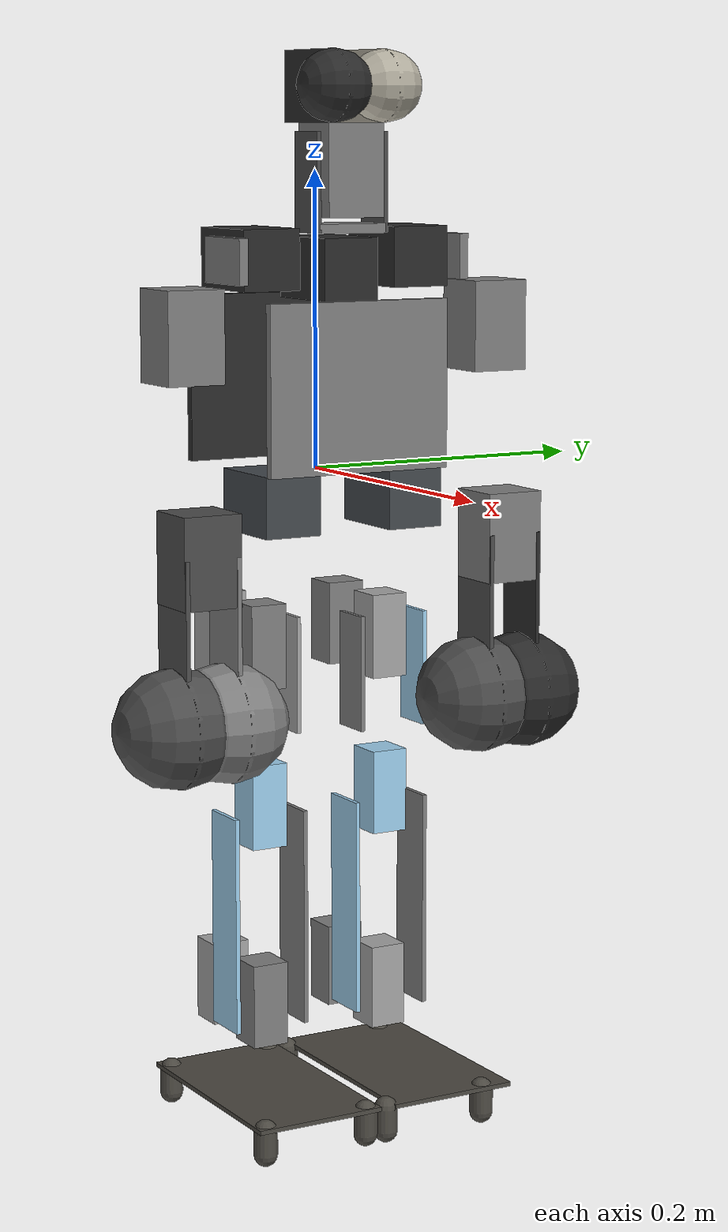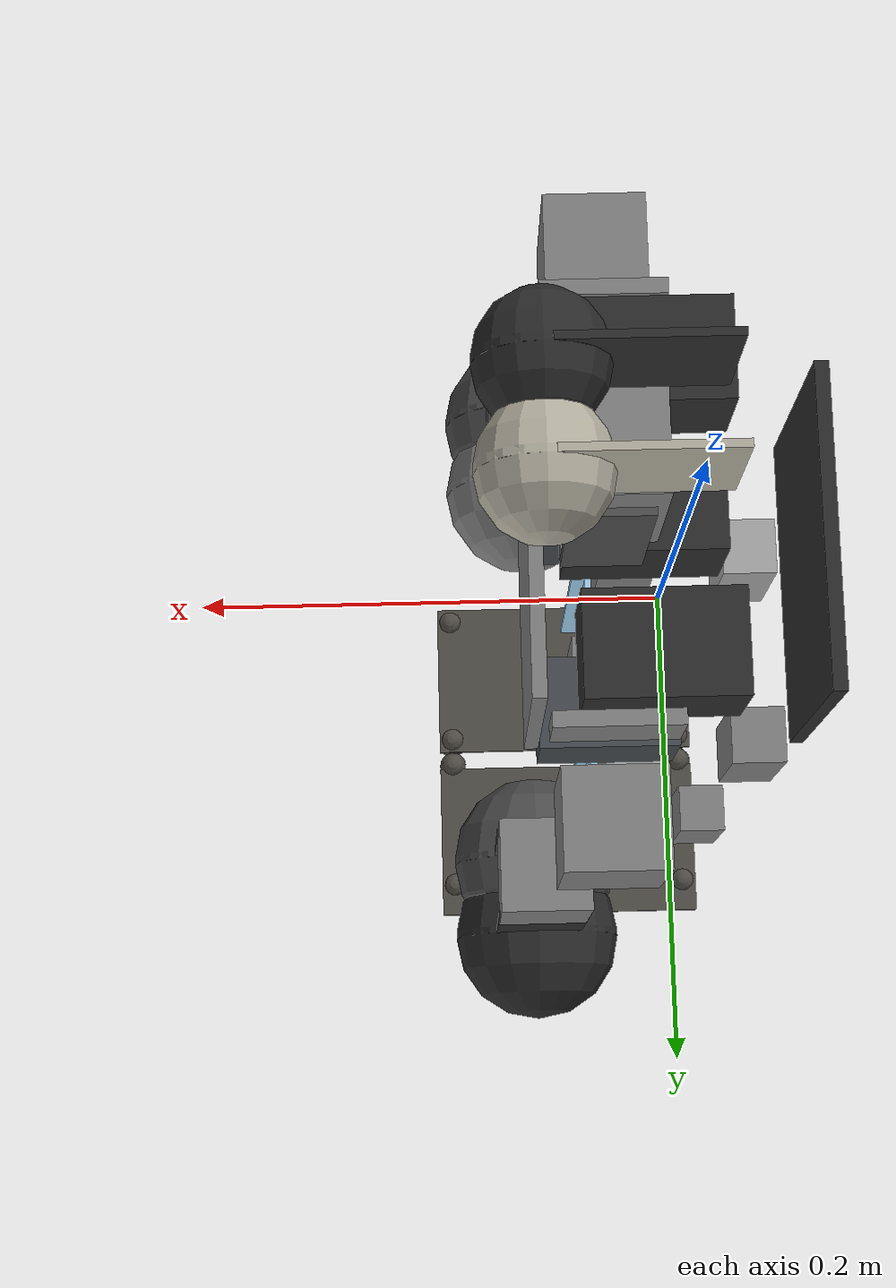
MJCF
<mujoco model="onshape">
  <compiler angle="radian"/>
  <worldbody>
    <!-- CUSTOM -->
    <body name="humanoid" pos="0 0 0">
      <joint name="humanoid_free" type="free"/>
      <!-- CUSTOM -->
      <geom size="0.0665 0.0565 0.003" pos="0.057869 0 0.0595" quat="0.499998 0.5 0.500002 0.5" type="box"/>
      <geom size="0.0201 0.03055 0.0205" pos="0.023419 -0.0464 -0.017" quat="9.38184e-07 -0.707105 0.707108 -9.38187e-07" type="box" rgba="0.262745 0.282353 0.301961 1"/>
      <geom size="0.0201 0.03055 0.0205" pos="0.013319 0.056 0.143" quat="0.499998 -0.5 -0.5 -0.500002" type="box" rgba="0.168627 0.168627 0.168627 1"/>
      <geom size="0.0665 0.0565 0.003" pos="-0.057131 0 0.0595" quat="0.499998 0.5 0.500002 0.5" type="box" rgba="0.168627 0.168627 0.168627 1"/>
      <geom size="0.0201 0.03055 0.0205" pos="0.023419 0.0464 -0.017" quat="9.38184e-07 -0.707105 0.707108 -9.38187e-07" type="box" rgba="0.262745 0.282353 0.301961 1"/>
      <geom size="0.0201 0.03055 0.0205" pos="0.018319 0 0.136" quat="0.707105 0 0 -0.707108" type="box" rgba="0.168627 0.168627 0.168627 1"/>
      <geom size="0.0201 0.03055 0.0205" pos="0.013319 -0.056 0.143" quat="0.499998 0.5 0.5 -0.500002" type="box" rgba="0.168627 0.168627 0.168627 1"/>
      <body name="u_shoulder" pos="0.030869 -0.0795 0.143" quat="9.38184e-07 9.38187e-07 0.707108 0.707105">
        <inertial pos="0 -0.00566234 -0.0159676" quat="0.627076 0.326766 0.627076 0.326766" mass="0.0570101" diaginertia="4.46e-05 3.15943e-05 2.21758e-05"/>
        <joint name="right_shoulder_pitch" pos="0 0 0" axis="0 0 1"/>
        <geom size="0.0245 0.015 0.003125" pos="0 0 -0.003125" type="box"/>
        <body name="right_humerus" pos="-0.0235 -0.03 -0.035" quat="0.707105 0 -0.707108 0">
          <inertial pos="-0.0219502 0.0714677 -0.0108756" quat="0.656406 0.694267 0.257251 -0.144731" mass="0.111948" diaginertia="0.0135499 0.013546 4.41839e-05"/>
          <joint name="right_shoulder_roll" pos="0 0 0" axis="0 0 1"/>
          <geom size="0.0201 0.03055 0.0205" pos="0 -0.01755 -0.0235" quat="1 0 0 0" type="box"/>
          <body name="radius_v2" pos="-0.0235 -0.142 -0.0025" quat="9.38184e-07 0.707105 -9.38187e-07 0.707108">
            <inertial pos="-0.0555551 -0.0926698 0.0242347" quat="0.543825 0.387752 -0.593435 0.449152" mass="0.133609" diaginertia="0.0229283 0.0228827 0.000121774"/>
            <joint name="right_elbow" pos="0 0 0" axis="0 0 1"/>
            <geom size="0.04 0.0015" pos="0 0.1276 0.042" quat="9.38184e-07 0.707105 0.707108 9.38187e-07" type="capsule"/>
            <geom size="0.0387756 0.0206 0.0015" pos="0 0.0539756 0.042" quat="9.38184e-07 0.707105 0.707108 9.38187e-07" type="box"/>
            <geom size="0.04 0.0015" pos="0 0.1276 0.005" quat="9.38184e-07 0.707105 0.707108 9.38187e-07" type="capsule" rgba="0.301961 0.301961 0.301961 1"/>
            <geom size="0.0387756 0.0206 0.0015" pos="0 0.0539756 0.005" quat="9.38184e-07 0.707105 0.707108 9.38187e-07" type="box" rgba="0.301961 0.301961 0.301961 1"/>
            <geom size="0.0201 0.03055 0.0205" pos="0 0.01755 0.0235" quat="1.32679e-06 -1 0 0" type="box" rgba="0.301961 0.301961 0.301961 1"/>
          </body>
        </body>
      </body>
      <body name="u_shoulder_2" pos="0.030869 0.0795 0.143" quat="0.707105 -0.707108 0 0">
        <inertial pos="0 0.00566234 0.0159676" quat="0.627076 0.326766 0.627076 0.326766" mass="0.0570101" diaginertia="4.46e-05 3.15943e-05 2.21758e-05"/>
        <joint name="left_shoulder_pitch" pos="0 0 0" axis="0 0 1"/>
        <geom size="0.0245 0.015 0.003125" pos="0 0 0.003125" quat="1.32679e-06 -1 0 0" type="box"/>
        <body name="left_humerus" pos="0.0235 0.03 0.035" quat="9.38184e-07 -0.707105 -9.38187e-07 -0.707108">
          <inertial pos="-0.0663577 0.040272 -0.0134765" quat="0.415543 0.655163 -0.341623 0.530451" mass="0.111948" diaginertia="0.0108012 0.0107658 7.7764e-05"/>
          <joint name="left_shoulder_roll" pos="0 0 0" axis="0 0 1"/>
          <geom size="0.0201 0.03055 0.0205" pos="0 -0.01755 -0.0235" quat="1 0 0 0" type="box"/>
          <body name="radius_v2_2" pos="0.0235 -0.142 -0.0025" quat="0.707105 0 0.707108 0">
            <inertial pos="0.0700592 0.094197 -0.0524277" quat="0.646612 0.400761 -0.519226 0.389471" mass="0.133609" diaginertia="0.0249685 0.0249115 0.000133694"/>
            <joint name="left_elbow" pos="0 0 0" axis="0 0 1"/>
            <geom size="0.0201 0.03055 0.0205" pos="0 -0.01755 -0.0235" quat="1 0 0 0" type="box"/>
            <geom size="0.04 0.0015" pos="0 -0.1276 -0.005" quat="0.707105 0 0 -0.707108" type="capsule" rgba="0.168627 0.168627 0.168627 1"/>
            <geom size="0.0387756 0.0206 0.0015" pos="0 -0.0539756 -0.005" quat="0.707105 0 0 -0.707108" type="box" rgba="0.168627 0.168627 0.168627 1"/>
            <geom size="0.04 0.0015" pos="0 -0.1276 -0.042" quat="0.707105 0 0 -0.707108" type="capsule" rgba="0.301961 0.301961 0.301961 1"/>
            <geom size="0.0387756 0.0206 0.0015" pos="0 -0.0539756 -0.042" quat="0.707105 0 0 -0.707108" type="box" rgba="0.301961 0.301961 0.301961 1"/>
          </body>
        </body>
      </body>
      <body name="u_hip_with_saver" pos="0.00586897 0.0464 -0.0411" quat="0.707105 0 0 0.707108">
        <inertial pos="-6.06619e-11 0.00126178 -0.0329138" quat="0.996166 -0.0435756 0.000376242 0.0758634" mass="0.136031" diaginertia="0.000103375 8.60215e-05 6.43987e-05"/>
        <joint name="left_hip_yaw" pos="0 0 0" axis="0 0 1"/>
        <body name="mx106_with_u_r" pos="0 -0.0200991 -0.0604" quat="0.499998 0.5 -0.5 0.500002">
          <inertial pos="-0.016034 -0.00248551 -0.0424236" quat="0.715028 0.072692 0.00874476 0.695251" mass="0.136461" diaginertia="0.000156441 0.000137709 7.28591e-05"/>
          <joint name="left_hip_roll" pos="0 0 0" axis="0 0 1"/>
          <geom size="0.0135 0.029 0.013" pos="-0.01515 -0.00015 -0.0799438" quat="9.38184e-07 -0.707105 -0.707108 9.38187e-07" type="box"/>
          <geom size="0.0135 0.029 0.013" pos="-0.01515 -0.0005 -0.02025" quat="0.499998 -0.5 -0.5 -0.500002" type="box" rgba="0.647059 0.647059 0.647059 1"/>
          <body name="thigh_horn_left" pos="0 0.016 -0.0201" quat="0.499998 0.5 -0.5 0.500002">
            <inertial pos="-9.36074e-05 0.0868627 0.0156903" quat="0.647079 0.762423 0.000165102 -8.89325e-05" mass="0.0845547" diaginertia="0.000327329 0.000313403 2.868e-05"/>
            <joint name="left_hip_pitch" pos="0 0 0" axis="0 0 1"/>
            <geom size="0.015 0.04 0.0015" pos="0 0.04 -0.0054" quat="1.32679e-06 1 0 0" type="box"/>
            <geom size="0.015 0.04 0.0015" pos="0 0.04 0.0436" quat="1.32679e-06 -1 0 0" type="box" rgba="0.615686 0.811765 0.929412 1"/>
            <geom size="0.0135 0.029 0.013" pos="0.00015 0.12485 0.0165" quat="1.76239e-12 -1.32679e-06 1 -1.32679e-06" type="box" rgba="0.615686 0.811765 0.929412 1"/>
            <body name="tibia_left_full" pos="0 0.14 -0.001" quat="0.707105 0 0 -0.707108">
              <inertial pos="-0.07 0 0.00139217" quat="0.5 0.5 0.5 0.5" mass="0.0501468" diaginertia="0.000261996 0.000247771 1.66507e-05"/>
              <joint name="left_knee" pos="0 0 0" axis="0 0 1"/>
              <geom size="0.075 0.0175 0.0015" pos="-0.065 0 0.0435" quat="1 0 0 0" type="box"/>
              <geom size="0.075 0.0175 0.0015" pos="-0.065 -0.0025 -0.0085" type="box" rgba="0.615686 0.811765 0.929412 1"/>
              <body name="mx106_with_u_l" pos="-0.14 0 0" quat="1 0 0 0">
                <inertial pos="0.016034 -0.0223173 0.0184793" quat="0.446427 0.567351 -0.484463 0.494077" mass="0.136461" diaginertia="0.000149093 0.000138281 7.97197e-05"/>
                <joint name="left_ankle_pitch" pos="0 0 0" axis="0 0 1"/>
                <geom size="0.0135 0.029 0.013" pos="0.01515 -0.0598438 0.01585" quat="0.499998 0.5 -0.5 0.500002" type="box"/>
                <geom size="0.0135 0.029 0.013" pos="0.01515 0.00015 0.0165" quat="9.38184e-07 -0.707105 0.707108 -9.38187e-07" type="box" rgba="0.647059 0.647059 0.647059 1"/>
                <body name="left_foot_asm" pos="0 0.0201 0.016" quat="9.38184e-07 9.38187e-07 -0.707108 -0.707105">
                  <inertial pos="0.0312589 0.00414298 0.000817452" quat="0.690732 0.0174038 0.027193 0.72239" mass="0.32139" diaginertia="0.000968473 0.000774227 0.000470766"/>
                  <joint name="left_ankle_roll" pos="0 0 0" axis="0 0 1"/>
                  <!-- CUSTOM -->
                  <geom name="pressure_geom_LRB" size="0.008 0.008" pos="0.052 -0.0435 -0.07563" quat="0.0210188 0.706794 0.021024 0.706794" type="capsule" rgba="0.301961 0.290196 0.262745 1"/>
                  <geom name="pressure_geom_LRF" size="0.008 0.008" pos="0.052 -0.0435 0.06597" quat="0.0210188 0.706794 0.021024 0.706794" type="capsule" rgba="0.301961 0.290196 0.262745 1"/>
                  <geom name="pressure_geom_LLB" size="0.008 0.008" pos="0.052 0.0325 -0.07563" quat="0.0210188 0.706794 0.021024 0.706794" type="capsule" rgba="0.301961 0.290196 0.262745 1"/>
                  <geom name="pressure_geom_LLF" size="0.008 0.008" pos="0.052 0.0325 0.06597" quat="0.0210188 0.706794 0.021024 0.706794" type="capsule" rgba="0.301961 0.290196 0.262745 1"/>
                  <!-- CUSTOM -->
                  <geom size="0.046 0.0788 0.0015" pos="0.0415 0.0055 -0.00483" quat="0.499998 -0.5 -0.500002 0.5" type="box" rgba="0.301961 0.290196 0.262745 1"/>
                </body>
              </body>
            </body>
          </body>
        </body>
      </body>
      <body name="u_hip_with_saver_2" pos="0.00586897 -0.0464 -0.0411" quat="0.707105 0 0 0.707108">
        <inertial pos="-6.06622e-11 0.00126178 -0.0329138" quat="0.996166 -0.0435756 0.000376242 0.0758634" mass="0.136031" diaginertia="0.000103375 8.60215e-05 6.43987e-05"/>
        <joint name="right_hip_yaw" pos="0 0 0" axis="0 0 1"/>
        <body name="mx106_with_u_l_2" pos="0 -0.0200991 -0.0604" quat="0.499998 0.5 -0.5 0.500002">
          <inertial pos="-0.0157981 0.00247927 -0.0424173" quat="0.694539 0.00867748 0.0728169 0.715708" mass="0.136461" diaginertia="0.000156478 0.000137759 7.28574e-05"/>
          <joint name="right_hip_roll" pos="0 0 0" axis="0 0 1"/>
          <geom size="0.0135 0.029 0.013" pos="-0.0149141 0.0005 -0.01995" quat="0.499998 0.5 0.5 -0.500002" type="box"/>
          <geom size="0.0135 0.029 0.013" pos="-0.0149141 -0.00015 -0.0799437" quat="9.38184e-07 -0.707105 -0.707108 9.38187e-07" type="box" rgba="0.647059 0.647059 0.647059 1"/>
          <body name="thigh_horn_right" pos="0.000235943 -0.016 -0.0201" quat="0.499998 0.5 -0.5 0.500002">
            <inertial pos="-0.000103673 0.0868627 -0.0156903" quat="0.762364 0.647148 3.09413e-05 8.56301e-05" mass="0.0845547" diaginertia="0.000327329 0.000313384 2.86975e-05"/>
            <joint name="right_hip_pitch" pos="0 0 0" axis="0 0 1"/>
            <geom size="0.015 0.04 0.0015" pos="0 0.04 -0.0434" quat="1.32679e-06 -1 0 0" type="box"/>
            <geom size="0.0135 0.029 0.013" pos="-0.00015 0.12485 -0.0165" quat="1 0 0 0" type="box" rgba="0.615686 0.811765 0.929412 1"/>
            <geom size="0.015 0.04 0.0015" pos="0 0.036 0.0054" quat="1 0 0 0" type="box" rgba="0.647059 0.647059 0.647059 1"/>
            <body name="tibia_right_full" pos="0 0.14 0" quat="0.707105 0 0 -0.707108">
              <inertial pos="-0.07 0 -0.00139217" quat="0.5 0.5 0.5 0.5" mass="0.0501468" diaginertia="0.000261996 0.000247771 1.66507e-05"/>
              <joint name="right_knee" pos="0 0 0" axis="0 0 1"/>
              <geom size="0.075 0.0175 0.0015" pos="-0.065 0.0005 0.0085" quat="1.32679e-06 -1 0 0" type="box"/>
              <geom size="0.075 0.0175 0.0015" pos="-0.065 0 -0.0435" quat="1 0 0 0" type="box" rgba="0.615686 0.811765 0.929412 1"/>
              <body name="mx106_with_u_r_2" pos="-0.14 0 0" quat="1 0 0 0">
                <inertial pos="0.016034 -0.0223236 -0.0184855" quat="0.482706 0.494004 -0.448596 0.5672" mass="0.136461" diaginertia="0.000148998 0.000138253 7.97586e-05"/>
                <joint name="right_ankle_pitch" pos="0 0 0" axis="0 0 1"/>
                <geom size="0.0135 0.029 0.013" pos="0.01515 -0.00015 -0.0165" quat="0.707105 0 0 0.707108" type="box"/>
                <geom size="0.0135 0.029 0.013" pos="0.01515 -0.0598438 -0.01615" quat="0.499998 0.5 -0.5 0.500002" type="box" rgba="0.647059 0.647059 0.647059 1"/>

                <body name="right_foot_asm" pos="0 0.0201 -0.016" quat="9.38184e-07 9.38187e-07 0.707108 0.707105">
                  <inertial pos="0.0312589 -0.00414302 0.000817452" quat="0.72044 0.0321563 0.0127286 0.692654" mass="0.32139" diaginertia="0.000968674 0.000774326 0.000470465"/>
                  <joint name="right_ankle_roll" pos="0 0 0" axis="0 0 1"/>
                  <!-- CUSTOM -->
                  <geom name="pressure_geom_RRB" size="0.008 0.008" pos="0.052 -0.0435 -0.07563" quat="0.0210188 0.706794 0.021024 0.706794" type="capsule" rgba="0.301961 0.290196 0.262745 1"/>
                  <geom name="pressure_geom_RRF" size="0.008 0.008" pos="0.052 -0.0435 0.06597" quat="0.0210188 0.706794 0.021024 0.706794" type="capsule" rgba="0.301961 0.290196 0.262745 1"/>
                  <geom name="pressure_geom_RLB" size="0.008 0.008" pos="0.052 0.0325 -0.07563" quat="0.0210188 0.706794 0.021024 0.706794" type="capsule" rgba="0.301961 0.290196 0.262745 1"/>
                  <geom name="pressure_geom_RLF" size="0.008 0.008" pos="0.052 0.0325 0.06597" quat="0.0210188 0.706794 0.021024 0.706794" type="capsule" rgba="0.301961 0.290196 0.262745 1"/>
                  <!-- CUSTOM -->
                  <geom size="0.046 0.0788 0.0015" pos="0.0415 -0.0055 -0.00483" quat="0.499998 -0.5 -0.500002 0.5" type="box" rgba="0.301961 0.290196 0.262745 1"/>
                </body>
              </body>
            </body>
          </body>
        </body>
      </body>
      <body name="u_neck" pos="0.035869 0 0.1595" quat="0.707105 0 0 -0.707108">
        <inertial pos="0 0 0.0206334" quat="0.501653 0.498342 0.498342 0.501653" mass="0.0544799" diaginertia="5.36569e-05 3.58371e-05 2.26324e-05"/>
        <joint name="head_yaw" pos="0 0 0" axis="0 0 1"/>
        <geom size="0.0245 0.015 0.003125" pos="0 0 0.003125" quat="1.32679e-06 1 0 0" type="box"/>
        <geom size="0.015 0.032901 0.0015" pos="0.025 0 0.032901" quat="0.499998 0.5 -0.500002 -0.5" type="box" rgba="0.301961 0.301961 0.301961 1"/>
        <geom size="0.015 0.032901 0.0015" pos="-0.025 0 0.032901" quat="0.499998 0.5 0.500002 0.5" type="box" rgba="0.301961 0.301961 0.301961 1"/>
        <body name="head__field_of_view_false" pos="-0.0235 0 0.058302" quat="0.499998 0.5 -0.500002 -0.5">
          <inertial pos="0.015805 0.114508 -0.0790378" quat="0.852827 0.457932 -0.188604 0.165572" mass="0.137167" diaginertia="0.0078724 0.00786247 7.44498e-05"/>
          <joint name="head_pitch" pos="0 0 0" axis="0 0 1"/>
          <geom size="0.0201 0.03055 0.0205" pos="0 -0.01755 -0.0235" quat="1 0 0 0" type="box"/>
          <geom size="0.0235 0.0015" pos="-0.0238 0.0365 -0.042" quat="1.76261e-12 -1.32679e-06 -1 1.32679e-06" type="capsule" rgba="0.168627 0.168627 0.168627 1"/>
          <geom size="0.0308 0.0235 0.0015" pos="0.01 0.0365 -0.042" quat="1.76261e-12 -1.32679e-06 -1 1.32679e-06" type="box" rgba="0.168627 0.168627 0.168627 1"/>
          <geom size="0.0235 0.0015" pos="-0.0238 0.0365 -0.005" quat="1.76261e-12 -1.32679e-06 -1 1.32679e-06" type="capsule" rgba="0.701961 0.682353 0.623529 1"/>
          <geom size="0.0308 0.0235 0.0015" pos="0.01 0.0365 -0.005" quat="1.76261e-12 -1.32679e-06 -1 1.32679e-06" type="box" rgba="0.701961 0.682353 0.623529 1"/>
        </body>
      </body>
    </body>
  </worldbody>

  <!-- CUSTOM -->
  <actuator>
    <position name="right_shoulder_pitch" joint="right_shoulder_pitch" forcelimited="true" forcerange="-0.4 0.4"/>
    <position name="right_shoulder_roll" joint="right_shoulder_roll" forcelimited="true" forcerange="-0.4 0.4"/>
    <position name="right_elbow" joint="right_elbow" forcelimited="true" forcerange="-0.4 0.4"/>
    <position name="left_shoulder_pitch" joint="left_shoulder_pitch" forcelimited="true" forcerange="-0.4 0.4"/>
    <position name="left_shoulder_roll" joint="left_shoulder_roll" forcelimited="true" forcerange="-0.4 0.4"/>
    <position name="left_elbow" joint="left_elbow" forcelimited="true" forcerange="-0.4 0.4"/>
    <position name="left_hip_yaw" joint="left_hip_yaw" forcelimited="true" forcerange="-0.4 0.4"/>
    <position name="left_hip_roll" joint="left_hip_roll" forcelimited="true" forcerange="-0.4 0.4"/>
    <position name="left_hip_pitch" joint="left_hip_pitch" forcelimited="true" forcerange="-0.4 0.4"/>
    <position name="left_knee" joint="left_knee" forcelimited="true" forcerange="-0.4 0.4"/>
    <position name="left_ankle_pitch" joint="left_ankle_pitch" forcelimited="true" forcerange="-0.4 0.4"/>
    <position name="left_ankle_roll" joint="left_ankle_roll" forcelimited="true" forcerange="-0.4 0.4"/>
    <position name="right_hip_yaw" joint="right_hip_yaw" forcelimited="true" forcerange="-0.4 0.4"/>
    <position name="right_hip_roll" joint="right_hip_roll" forcelimited="true" forcerange="-0.4 0.4"/>
    <position name="right_hip_pitch" joint="right_hip_pitch" forcelimited="true" forcerange="-0.4 0.4"/>
    <position name="right_knee" joint="right_knee" forcelimited="true" forcerange="-0.4 0.4"/>
    <position name="right_ankle_pitch" joint="right_ankle_pitch" forcelimited="true" forcerange="-0.4 0.4"/>
    <position name="right_ankle_roll" joint="right_ankle_roll" forcelimited="true" forcerange="-0.4 0.4"/>
    <position name="head_yaw" joint="head_yaw" forcelimited="true" forcerange="-0.4 0.4"/>
    <position name="head_pitch" joint="head_pitch" forcelimited="true" forcerange="-0.4 0.4"/>
  </actuator>

  <!-- CUSTOM -->
  <!-- MAKE SURE ALL CYLINDERS ARE CAPSULES (CTRL-F + CTRL-H) TO MAKE COMPATIBLE WITH JAX -->
  <!-- CUSTOM -->
</mujoco>
